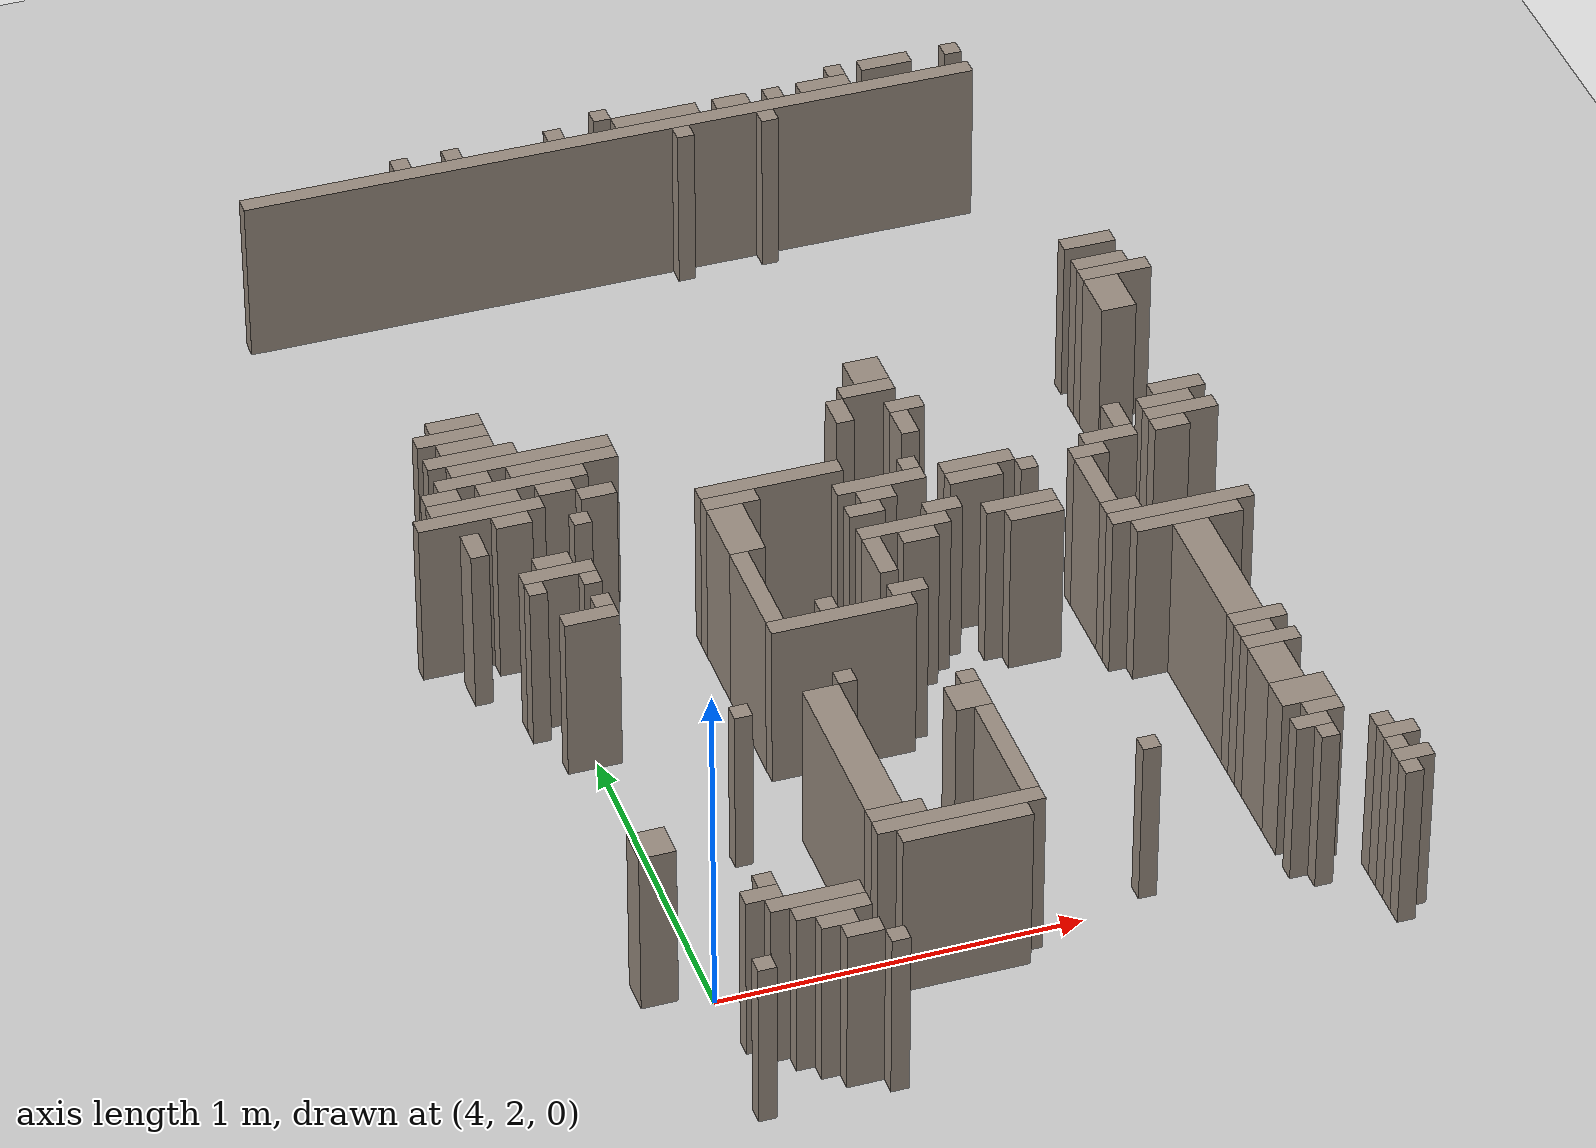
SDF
<sdf version="1.8">
 <world name="sala_real">
  <model name="ground_plane">
   <static>true</static>
   <link name="link">
    <collision name="col">
     <geometry><plane><normal>0 0 1</normal><size>100 100</size></plane></geometry>
    </collision>
    <visual name="vis">
     <geometry><plane><normal>0 0 1</normal><size>100 100</size></plane></geometry>
     <material><ambient>0.8 0.8 0.8 1</ambient><diffuse>0.8 0.8 0.8 1</diffuse></material>
    </visual>
   </link>
  </model>
  <model name="wall_18">
   <static>true</static>
   <pose>5.790 4.162 0.250 0 0 0</pose>
   <link name="link">
    <collision name="col"><geometry><box><size>0.150 0.050 0.500</size></box></geometry></collision>
    <visual name="vis">
     <geometry><box><size>0.150 0.050 0.500</size></box></geometry>
     <material><ambient>0.6 0.55 0.5 1</ambient><diffuse>0.6 0.55 0.5 1</diffuse></material>
    </visual>
   </link>
  </model>
  <model name="wall_22">
   <static>true</static>
   <pose>3.890 3.912 0.250 0 0 0</pose>
   <link name="link">
    <collision name="col"><geometry><box><size>0.150 0.050 0.500</size></box></geometry></collision>
    <visual name="vis">
     <geometry><box><size>0.150 0.050 0.500</size></box></geometry>
     <material><ambient>0.6 0.55 0.5 1</ambient><diffuse>0.6 0.55 0.5 1</diffuse></material>
    </visual>
   </link>
  </model>
  <model name="wall_25">
   <static>true</static>
   <pose>4.890 5.012 0.250 0 0 0</pose>
   <link name="link">
    <collision name="col"><geometry><box><size>0.050 0.050 0.500</size></box></geometry></collision>
    <visual name="vis">
     <geometry><box><size>0.050 0.050 0.500</size></box></geometry>
     <material><ambient>0.6 0.55 0.5 1</ambient><diffuse>0.6 0.55 0.5 1</diffuse></material>
    </visual>
   </link>
  </model>
  <model name="wall_26">
   <static>true</static>
   <pose>5.065 5.112 0.250 0 0 0</pose>
   <link name="link">
    <collision name="col"><geometry><box><size>0.100 0.050 0.500</size></box></geometry></collision>
    <visual name="vis">
     <geometry><box><size>0.100 0.050 0.500</size></box></geometry>
     <material><ambient>0.6 0.55 0.5 1</ambient><diffuse>0.6 0.55 0.5 1</diffuse></material>
    </visual>
   </link>
  </model>
  <model name="wall_32">
   <static>true</static>
   <pose>3.765 3.612 0.250 0 0 0</pose>
   <link name="link">
    <collision name="col"><geometry><box><size>0.100 0.050 0.500</size></box></geometry></collision>
    <visual name="vis">
     <geometry><box><size>0.100 0.050 0.500</size></box></geometry>
     <material><ambient>0.6 0.55 0.5 1</ambient><diffuse>0.6 0.55 0.5 1</diffuse></material>
    </visual>
   </link>
  </model>
  <model name="wall_33">
   <static>true</static>
   <pose>5.790 4.062 0.250 0 0 0</pose>
   <link name="link">
    <collision name="col"><geometry><box><size>0.150 0.050 0.500</size></box></geometry></collision>
    <visual name="vis">
     <geometry><box><size>0.150 0.050 0.500</size></box></geometry>
     <material><ambient>0.6 0.55 0.5 1</ambient><diffuse>0.6 0.55 0.5 1</diffuse></material>
    </visual>
   </link>
  </model>
  <model name="wall_35">
   <static>true</static>
   <pose>4.090 5.112 0.250 0 0 0</pose>
   <link name="link">
    <collision name="col"><geometry><box><size>0.050 0.050 0.500</size></box></geometry></collision>
    <visual name="vis">
     <geometry><box><size>0.050 0.050 0.500</size></box></geometry>
     <material><ambient>0.6 0.55 0.5 1</ambient><diffuse>0.6 0.55 0.5 1</diffuse></material>
    </visual>
   </link>
  </model>
  <model name="wall_38">
   <static>true</static>
   <pose>5.540 5.162 0.250 0 0 0</pose>
   <link name="link">
    <collision name="col"><geometry><box><size>0.150 0.050 0.500</size></box></geometry></collision>
    <visual name="vis">
     <geometry><box><size>0.150 0.050 0.500</size></box></geometry>
     <material><ambient>0.6 0.55 0.5 1</ambient><diffuse>0.6 0.55 0.5 1</diffuse></material>
    </visual>
   </link>
  </model>
  <model name="wall_44">
   <static>true</static>
   <pose>5.015 3.787 0.250 0 0 0</pose>
   <link name="link">
    <collision name="col"><geometry><box><size>0.100 0.100 0.500</size></box></geometry></collision>
    <visual name="vis">
     <geometry><box><size>0.100 0.100 0.500</size></box></geometry>
     <material><ambient>0.6 0.55 0.5 1</ambient><diffuse>0.6 0.55 0.5 1</diffuse></material>
    </visual>
   </link>
  </model>
  <model name="wall_45">
   <static>true</static>
   <pose>4.890 3.312 0.250 0 0 0</pose>
   <link name="link">
    <collision name="col"><geometry><box><size>0.250 0.050 0.500</size></box></geometry></collision>
    <visual name="vis">
     <geometry><box><size>0.250 0.050 0.500</size></box></geometry>
     <material><ambient>0.6 0.55 0.5 1</ambient><diffuse>0.6 0.55 0.5 1</diffuse></material>
    </visual>
   </link>
  </model>
  <model name="wall_47">
   <static>true</static>
   <pose>4.040 3.162 0.250 0 0 0</pose>
   <link name="link">
    <collision name="col"><geometry><box><size>0.050 0.050 0.500</size></box></geometry></collision>
    <visual name="vis">
     <geometry><box><size>0.050 0.050 0.500</size></box></geometry>
     <material><ambient>0.6 0.55 0.5 1</ambient><diffuse>0.6 0.55 0.5 1</diffuse></material>
    </visual>
   </link>
  </model>
  <model name="wall_49">
   <static>true</static>
   <pose>5.465 3.262 0.250 0 0 0</pose>
   <link name="link">
    <collision name="col"><geometry><box><size>0.100 0.050 0.500</size></box></geometry></collision>
    <visual name="vis">
     <geometry><box><size>0.100 0.050 0.500</size></box></geometry>
     <material><ambient>0.6 0.55 0.5 1</ambient><diffuse>0.6 0.55 0.5 1</diffuse></material>
    </visual>
   </link>
  </model>
  <model name="wall_56">
   <static>true</static>
   <pose>4.815 3.212 0.250 0 0 0</pose>
   <link name="link">
    <collision name="col"><geometry><box><size>0.100 0.050 0.500</size></box></geometry></collision>
    <visual name="vis">
     <geometry><box><size>0.100 0.050 0.500</size></box></geometry>
     <material><ambient>0.6 0.55 0.5 1</ambient><diffuse>0.6 0.55 0.5 1</diffuse></material>
    </visual>
   </link>
  </model>
  <model name="wall_59">
   <static>true</static>
   <pose>4.615 3.412 0.250 0 0 0</pose>
   <link name="link">
    <collision name="col"><geometry><box><size>0.400 0.050 0.500</size></box></geometry></collision>
    <visual name="vis">
     <geometry><box><size>0.400 0.050 0.500</size></box></geometry>
     <material><ambient>0.6 0.55 0.5 1</ambient><diffuse>0.6 0.55 0.5 1</diffuse></material>
    </visual>
   </link>
  </model>
  <model name="wall_66">
   <static>true</static>
   <pose>4.540 5.112 0.250 0 0 0</pose>
   <link name="link">
    <collision name="col"><geometry><box><size>0.050 0.050 0.500</size></box></geometry></collision>
    <visual name="vis">
     <geometry><box><size>0.050 0.050 0.500</size></box></geometry>
     <material><ambient>0.6 0.55 0.5 1</ambient><diffuse>0.6 0.55 0.5 1</diffuse></material>
    </visual>
   </link>
  </model>
  <model name="wall_69">
   <static>true</static>
   <pose>4.240 5.112 0.250 0 0 0</pose>
   <link name="link">
    <collision name="col"><geometry><box><size>0.050 0.050 0.500</size></box></geometry></collision>
    <visual name="vis">
     <geometry><box><size>0.050 0.050 0.500</size></box></geometry>
     <material><ambient>0.6 0.55 0.5 1</ambient><diffuse>0.6 0.55 0.5 1</diffuse></material>
    </visual>
   </link>
  </model>
  <model name="wall_70">
   <static>true</static>
   <pose>4.465 3.237 0.250 0 0 0</pose>
   <link name="link">
    <collision name="col"><geometry><box><size>0.100 0.200 0.500</size></box></geometry></collision>
    <visual name="vis">
     <geometry><box><size>0.100 0.200 0.500</size></box></geometry>
     <material><ambient>0.6 0.55 0.5 1</ambient><diffuse>0.6 0.55 0.5 1</diffuse></material>
    </visual>
   </link>
  </model>
  <model name="wall_76">
   <static>true</static>
   <pose>4.815 2.862 0.250 0 0 0</pose>
   <link name="link">
    <collision name="col"><geometry><box><size>0.100 0.050 0.500</size></box></geometry></collision>
    <visual name="vis">
     <geometry><box><size>0.100 0.050 0.500</size></box></geometry>
     <material><ambient>0.6 0.55 0.5 1</ambient><diffuse>0.6 0.55 0.5 1</diffuse></material>
    </visual>
   </link>
  </model>
  <model name="wall_77">
   <static>true</static>
   <pose>5.615 2.687 0.250 0 0 0</pose>
   <link name="link">
    <collision name="col"><geometry><box><size>0.100 0.400 0.500</size></box></geometry></collision>
    <visual name="vis">
     <geometry><box><size>0.100 0.400 0.500</size></box></geometry>
     <material><ambient>0.6 0.55 0.5 1</ambient><diffuse>0.6 0.55 0.5 1</diffuse></material>
    </visual>
   </link>
  </model>
  <model name="wall_80">
   <static>true</static>
   <pose>5.640 2.462 0.250 0 0 0</pose>
   <link name="link">
    <collision name="col"><geometry><box><size>0.150 0.050 0.500</size></box></geometry></collision>
    <visual name="vis">
     <geometry><box><size>0.150 0.050 0.500</size></box></geometry>
     <material><ambient>0.6 0.55 0.5 1</ambient><diffuse>0.6 0.55 0.5 1</diffuse></material>
    </visual>
   </link>
  </model>
  <model name="wall_83">
   <static>true</static>
   <pose>4.840 2.462 0.250 0 0 0</pose>
   <link name="link">
    <collision name="col"><geometry><box><size>0.050 0.050 0.500</size></box></geometry></collision>
    <visual name="vis">
     <geometry><box><size>0.050 0.050 0.500</size></box></geometry>
     <material><ambient>0.6 0.55 0.5 1</ambient><diffuse>0.6 0.55 0.5 1</diffuse></material>
    </visual>
   </link>
  </model>
  <model name="wall_84">
   <static>true</static>
   <pose>5.615 2.412 0.250 0 0 0</pose>
   <link name="link">
    <collision name="col"><geometry><box><size>0.100 0.050 0.500</size></box></geometry></collision>
    <visual name="vis">
     <geometry><box><size>0.100 0.050 0.500</size></box></geometry>
     <material><ambient>0.6 0.55 0.5 1</ambient><diffuse>0.6 0.55 0.5 1</diffuse></material>
    </visual>
   </link>
  </model>
  <model name="wall_90">
   <static>true</static>
   <pose>5.640 2.362 0.250 0 0 0</pose>
   <link name="link">
    <collision name="col"><geometry><box><size>0.150 0.050 0.500</size></box></geometry></collision>
    <visual name="vis">
     <geometry><box><size>0.150 0.050 0.500</size></box></geometry>
     <material><ambient>0.6 0.55 0.5 1</ambient><diffuse>0.6 0.55 0.5 1</diffuse></material>
    </visual>
   </link>
  </model>
  <model name="wall_93">
   <static>true</static>
   <pose>5.190 5.112 0.250 0 0 0</pose>
   <link name="link">
    <collision name="col"><geometry><box><size>0.050 0.050 0.500</size></box></geometry></collision>
    <visual name="vis">
     <geometry><box><size>0.050 0.050 0.500</size></box></geometry>
     <material><ambient>0.6 0.55 0.5 1</ambient><diffuse>0.6 0.55 0.5 1</diffuse></material>
    </visual>
   </link>
  </model>
  <model name="wall_94">
   <static>true</static>
   <pose>4.490 3.362 0.250 0 0 0</pose>
   <link name="link">
    <collision name="col"><geometry><box><size>0.150 0.050 0.500</size></box></geometry></collision>
    <visual name="vis">
     <geometry><box><size>0.150 0.050 0.500</size></box></geometry>
     <material><ambient>0.6 0.55 0.5 1</ambient><diffuse>0.6 0.55 0.5 1</diffuse></material>
    </visual>
   </link>
  </model>
  <model name="wall_95">
   <static>true</static>
   <pose>5.615 2.262 0.250 0 0 0</pose>
   <link name="link">
    <collision name="col"><geometry><box><size>0.100 0.150 0.500</size></box></geometry></collision>
    <visual name="vis">
     <geometry><box><size>0.100 0.150 0.500</size></box></geometry>
     <material><ambient>0.6 0.55 0.5 1</ambient><diffuse>0.6 0.55 0.5 1</diffuse></material>
    </visual>
   </link>
  </model>
  <model name="wall_102">
   <static>true</static>
   <pose>4.090 3.412 0.250 0 0 0</pose>
   <link name="link">
    <collision name="col"><geometry><box><size>0.050 0.050 0.500</size></box></geometry></collision>
    <visual name="vis">
     <geometry><box><size>0.050 0.050 0.500</size></box></geometry>
     <material><ambient>0.6 0.55 0.5 1</ambient><diffuse>0.6 0.55 0.5 1</diffuse></material>
    </visual>
   </link>
  </model>
  <model name="wall_103">
   <static>true</static>
   <pose>5.790 1.962 0.250 0 0 0</pose>
   <link name="link">
    <collision name="col"><geometry><box><size>0.050 0.050 0.500</size></box></geometry></collision>
    <visual name="vis">
     <geometry><box><size>0.050 0.050 0.500</size></box></geometry>
     <material><ambient>0.6 0.55 0.5 1</ambient><diffuse>0.6 0.55 0.5 1</diffuse></material>
    </visual>
   </link>
  </model>
  <model name="wall_104">
   <static>true</static>
   <pose>4.065 3.562 0.250 0 0 0</pose>
   <link name="link">
    <collision name="col"><geometry><box><size>0.100 0.050 0.500</size></box></geometry></collision>
    <visual name="vis">
     <geometry><box><size>0.100 0.050 0.500</size></box></geometry>
     <material><ambient>0.6 0.55 0.5 1</ambient><diffuse>0.6 0.55 0.5 1</diffuse></material>
    </visual>
   </link>
  </model>
  <model name="wall_105">
   <static>true</static>
   <pose>5.815 1.912 0.250 0 0 0</pose>
   <link name="link">
    <collision name="col"><geometry><box><size>0.100 0.050 0.500</size></box></geometry></collision>
    <visual name="vis">
     <geometry><box><size>0.100 0.050 0.500</size></box></geometry>
     <material><ambient>0.6 0.55 0.5 1</ambient><diffuse>0.6 0.55 0.5 1</diffuse></material>
    </visual>
   </link>
  </model>
  <model name="wall_107">
   <static>true</static>
   <pose>5.790 1.862 0.250 0 0 0</pose>
   <link name="link">
    <collision name="col"><geometry><box><size>0.050 0.050 0.500</size></box></geometry></collision>
    <visual name="vis">
     <geometry><box><size>0.050 0.050 0.500</size></box></geometry>
     <material><ambient>0.6 0.55 0.5 1</ambient><diffuse>0.6 0.55 0.5 1</diffuse></material>
    </visual>
   </link>
  </model>
  <model name="wall_132">
   <static>true</static>
   <pose>5.740 3.412 0.250 0 0 0</pose>
   <link name="link">
    <collision name="col"><geometry><box><size>0.150 0.050 0.500</size></box></geometry></collision>
    <visual name="vis">
     <geometry><box><size>0.150 0.050 0.500</size></box></geometry>
     <material><ambient>0.6 0.55 0.5 1</ambient><diffuse>0.6 0.55 0.5 1</diffuse></material>
    </visual>
   </link>
  </model>
  <model name="wall_134">
   <static>true</static>
   <pose>3.890 3.762 0.250 0 0 0</pose>
   <link name="link">
    <collision name="col"><geometry><box><size>0.250 0.050 0.500</size></box></geometry></collision>
    <visual name="vis">
     <geometry><box><size>0.250 0.050 0.500</size></box></geometry>
     <material><ambient>0.6 0.55 0.5 1</ambient><diffuse>0.6 0.55 0.5 1</diffuse></material>
    </visual>
   </link>
  </model>
  <model name="wall_135">
   <static>true</static>
   <pose>4.090 1.862 0.250 0 0 0</pose>
   <link name="link">
    <collision name="col"><geometry><box><size>0.050 0.050 0.500</size></box></geometry></collision>
    <visual name="vis">
     <geometry><box><size>0.050 0.050 0.500</size></box></geometry>
     <material><ambient>0.6 0.55 0.5 1</ambient><diffuse>0.6 0.55 0.5 1</diffuse></material>
    </visual>
   </link>
  </model>
  <model name="wall_144">
   <static>true</static>
   <pose>3.865 2.087 0.250 0 0 0</pose>
   <link name="link">
    <collision name="col"><geometry><box><size>0.100 0.100 0.500</size></box></geometry></collision>
    <visual name="vis">
     <geometry><box><size>0.100 0.100 0.500</size></box></geometry>
     <material><ambient>0.6 0.55 0.5 1</ambient><diffuse>0.6 0.55 0.5 1</diffuse></material>
    </visual>
   </link>
  </model>
  <model name="wall_147">
   <static>true</static>
   <pose>3.890 3.812 0.250 0 0 0</pose>
   <link name="link">
    <collision name="col"><geometry><box><size>0.150 0.050 0.500</size></box></geometry></collision>
    <visual name="vis">
     <geometry><box><size>0.150 0.050 0.500</size></box></geometry>
     <material><ambient>0.6 0.55 0.5 1</ambient><diffuse>0.6 0.55 0.5 1</diffuse></material>
    </visual>
   </link>
  </model>
  <model name="wall_153">
   <static>true</static>
   <pose>3.915 3.462 0.250 0 0 0</pose>
   <link name="link">
    <collision name="col"><geometry><box><size>0.100 0.050 0.500</size></box></geometry></collision>
    <visual name="vis">
     <geometry><box><size>0.100 0.050 0.500</size></box></geometry>
     <material><ambient>0.6 0.55 0.5 1</ambient><diffuse>0.6 0.55 0.5 1</diffuse></material>
    </visual>
   </link>
  </model>
  <model name="wall_169">
   <static>true</static>
   <pose>3.965 3.212 0.250 0 0 0</pose>
   <link name="link">
    <collision name="col"><geometry><box><size>0.200 0.050 0.500</size></box></geometry></collision>
    <visual name="vis">
     <geometry><box><size>0.200 0.050 0.500</size></box></geometry>
     <material><ambient>0.6 0.55 0.5 1</ambient><diffuse>0.6 0.55 0.5 1</diffuse></material>
    </visual>
   </link>
  </model>
  <model name="wall_175">
   <static>true</static>
   <pose>4.440 2.987 0.250 0 0 0</pose>
   <link name="link">
    <collision name="col"><geometry><box><size>0.050 0.300 0.500</size></box></geometry></collision>
    <visual name="vis">
     <geometry><box><size>0.050 0.300 0.500</size></box></geometry>
     <material><ambient>0.6 0.55 0.5 1</ambient><diffuse>0.6 0.55 0.5 1</diffuse></material>
    </visual>
   </link>
  </model>
  <model name="wall_176">
   <static>true</static>
   <pose>4.590 2.862 0.250 0 0 0</pose>
   <link name="link">
    <collision name="col"><geometry><box><size>0.050 0.050 0.500</size></box></geometry></collision>
    <visual name="vis">
     <geometry><box><size>0.050 0.050 0.500</size></box></geometry>
     <material><ambient>0.6 0.55 0.5 1</ambient><diffuse>0.6 0.55 0.5 1</diffuse></material>
    </visual>
   </link>
  </model>
  <model name="wall_198">
   <static>true</static>
   <pose>3.990 3.012 0.250 0 0 0</pose>
   <link name="link">
    <collision name="col"><geometry><box><size>0.150 0.050 0.500</size></box></geometry></collision>
    <visual name="vis">
     <geometry><box><size>0.150 0.050 0.500</size></box></geometry>
     <material><ambient>0.6 0.55 0.5 1</ambient><diffuse>0.6 0.55 0.5 1</diffuse></material>
    </visual>
   </link>
  </model>
  <model name="wall_203">
   <static>true</static>
   <pose>4.465 2.287 0.250 0 0 0</pose>
   <link name="link">
    <collision name="col"><geometry><box><size>0.100 0.500 0.500</size></box></geometry></collision>
    <visual name="vis">
     <geometry><box><size>0.100 0.500 0.500</size></box></geometry>
     <material><ambient>0.6 0.55 0.5 1</ambient><diffuse>0.6 0.55 0.5 1</diffuse></material>
    </visual>
   </link>
  </model>
  <model name="wall_209">
   <static>true</static>
   <pose>3.965 3.262 0.250 0 0 0</pose>
   <link name="link">
    <collision name="col"><geometry><box><size>0.100 0.050 0.500</size></box></geometry></collision>
    <visual name="vis">
     <geometry><box><size>0.100 0.050 0.500</size></box></geometry>
     <material><ambient>0.6 0.55 0.5 1</ambient><diffuse>0.6 0.55 0.5 1</diffuse></material>
    </visual>
   </link>
  </model>
  <model name="wall_263">
   <static>true</static>
   <pose>3.890 3.162 0.250 0 0 0</pose>
   <link name="link">
    <collision name="col"><geometry><box><size>0.050 0.050 0.500</size></box></geometry></collision>
    <visual name="vis">
     <geometry><box><size>0.050 0.050 0.500</size></box></geometry>
     <material><ambient>0.6 0.55 0.5 1</ambient><diffuse>0.6 0.55 0.5 1</diffuse></material>
    </visual>
   </link>
  </model>
  <model name="wall_270">
   <static>true</static>
   <pose>3.790 3.387 0.250 0 0 0</pose>
   <link name="link">
    <collision name="col"><geometry><box><size>0.050 0.100 0.500</size></box></geometry></collision>
    <visual name="vis">
     <geometry><box><size>0.050 0.100 0.500</size></box></geometry>
     <material><ambient>0.6 0.55 0.5 1</ambient><diffuse>0.6 0.55 0.5 1</diffuse></material>
    </visual>
   </link>
  </model>
  <model name="wall_287">
   <static>true</static>
   <pose>5.190 2.062 0.250 0 0 0</pose>
   <link name="link">
    <collision name="col"><geometry><box><size>0.050 0.050 0.500</size></box></geometry></collision>
    <visual name="vis">
     <geometry><box><size>0.050 0.050 0.500</size></box></geometry>
     <material><ambient>0.6 0.55 0.5 1</ambient><diffuse>0.6 0.55 0.5 1</diffuse></material>
    </visual>
   </link>
  </model>
  <model name="wall_309">
   <static>true</static>
   <pose>3.865 3.862 0.250 0 0 0</pose>
   <link name="link">
    <collision name="col"><geometry><box><size>0.200 0.050 0.500</size></box></geometry></collision>
    <visual name="vis">
     <geometry><box><size>0.200 0.050 0.500</size></box></geometry>
     <material><ambient>0.6 0.55 0.5 1</ambient><diffuse>0.6 0.55 0.5 1</diffuse></material>
    </visual>
   </link>
  </model>
  <model name="wall_333">
   <static>true</static>
   <pose>3.990 1.562 0.250 0 0 0</pose>
   <link name="link">
    <collision name="col"><geometry><box><size>0.050 0.050 0.500</size></box></geometry></collision>
    <visual name="vis">
     <geometry><box><size>0.050 0.050 0.500</size></box></geometry>
     <material><ambient>0.6 0.55 0.5 1</ambient><diffuse>0.6 0.55 0.5 1</diffuse></material>
    </visual>
   </link>
  </model>
  <model name="wall_345">
   <static>true</static>
   <pose>4.040 3.062 0.250 0 0 0</pose>
   <link name="link">
    <collision name="col"><geometry><box><size>0.050 0.050 0.500</size></box></geometry></collision>
    <visual name="vis">
     <geometry><box><size>0.050 0.050 0.500</size></box></geometry>
     <material><ambient>0.6 0.55 0.5 1</ambient><diffuse>0.6 0.55 0.5 1</diffuse></material>
    </visual>
   </link>
  </model>
  <model name="wall_403">
   <static>true</static>
   <pose>4.990 3.362 0.250 0 0 0</pose>
   <link name="link">
    <collision name="col"><geometry><box><size>0.050 0.050 0.500</size></box></geometry></collision>
    <visual name="vis">
     <geometry><box><size>0.050 0.050 0.500</size></box></geometry>
     <material><ambient>0.6 0.55 0.5 1</ambient><diffuse>0.6 0.55 0.5 1</diffuse></material>
    </visual>
   </link>
  </model>
  <model name="wall_404">
   <static>true</static>
   <pose>5.140 5.012 0.250 0 0 0</pose>
   <link name="link">
    <collision name="col"><geometry><box><size>0.050 0.050 0.500</size></box></geometry></collision>
    <visual name="vis">
     <geometry><box><size>0.050 0.050 0.500</size></box></geometry>
     <material><ambient>0.6 0.55 0.5 1</ambient><diffuse>0.6 0.55 0.5 1</diffuse></material>
    </visual>
   </link>
  </model>
  <model name="wall_410">
   <static>true</static>
   <pose>4.165 3.512 0.250 0 0 0</pose>
   <link name="link">
    <collision name="col"><geometry><box><size>0.100 0.050 0.500</size></box></geometry></collision>
    <visual name="vis">
     <geometry><box><size>0.100 0.050 0.500</size></box></geometry>
     <material><ambient>0.6 0.55 0.5 1</ambient><diffuse>0.6 0.55 0.5 1</diffuse></material>
    </visual>
   </link>
  </model>
  <model name="wall_411">
   <static>true</static>
   <pose>4.790 3.012 0.250 0 0 0</pose>
   <link name="link">
    <collision name="col"><geometry><box><size>0.050 0.150 0.500</size></box></geometry></collision>
    <visual name="vis">
     <geometry><box><size>0.050 0.150 0.500</size></box></geometry>
     <material><ambient>0.6 0.55 0.5 1</ambient><diffuse>0.6 0.55 0.5 1</diffuse></material>
    </visual>
   </link>
  </model>
  <model name="wall_607">
   <static>true</static>
   <pose>4.690 5.162 0.250 0 0 0</pose>
   <link name="link">
    <collision name="col"><geometry><box><size>0.050 0.050 0.500</size></box></geometry></collision>
    <visual name="vis">
     <geometry><box><size>0.050 0.050 0.500</size></box></geometry>
     <material><ambient>0.6 0.55 0.5 1</ambient><diffuse>0.6 0.55 0.5 1</diffuse></material>
    </visual>
   </link>
  </model>
  <model name="wall_608">
   <static>true</static>
   <pose>5.390 5.162 0.250 0 0 0</pose>
   <link name="link">
    <collision name="col"><geometry><box><size>0.050 0.050 0.500</size></box></geometry></collision>
    <visual name="vis">
     <geometry><box><size>0.050 0.050 0.500</size></box></geometry>
     <material><ambient>0.6 0.55 0.5 1</ambient><diffuse>0.6 0.55 0.5 1</diffuse></material>
    </visual>
   </link>
  </model>
  <model name="wall_609">
   <static>true</static>
   <pose>5.540 3.312 0.250 0 0 0</pose>
   <link name="link">
    <collision name="col"><geometry><box><size>0.150 0.050 0.500</size></box></geometry></collision>
    <visual name="vis">
     <geometry><box><size>0.150 0.050 0.500</size></box></geometry>
     <material><ambient>0.6 0.55 0.5 1</ambient><diffuse>0.6 0.55 0.5 1</diffuse></material>
    </visual>
   </link>
  </model>
  <model name="wall_610">
   <static>true</static>
   <pose>5.740 5.162 0.250 0 0 0</pose>
   <link name="link">
    <collision name="col"><geometry><box><size>0.050 0.050 0.500</size></box></geometry></collision>
    <visual name="vis">
     <geometry><box><size>0.050 0.050 0.500</size></box></geometry>
     <material><ambient>0.6 0.55 0.5 1</ambient><diffuse>0.6 0.55 0.5 1</diffuse></material>
    </visual>
   </link>
  </model>
  <model name="wall_615">
   <static>true</static>
   <pose>4.240 2.512 0.250 0 0 0</pose>
   <link name="link">
    <collision name="col"><geometry><box><size>0.050 0.050 0.500</size></box></geometry></collision>
    <visual name="vis">
     <geometry><box><size>0.050 0.050 0.500</size></box></geometry>
     <material><ambient>0.6 0.55 0.5 1</ambient><diffuse>0.6 0.55 0.5 1</diffuse></material>
    </visual>
   </link>
  </model>
  <model name="wall_616">
   <static>true</static>
   <pose>4.540 2.562 0.250 0 0 0</pose>
   <link name="link">
    <collision name="col"><geometry><box><size>0.050 0.050 0.500</size></box></geometry></collision>
    <visual name="vis">
     <geometry><box><size>0.050 0.050 0.500</size></box></geometry>
     <material><ambient>0.6 0.55 0.5 1</ambient><diffuse>0.6 0.55 0.5 1</diffuse></material>
    </visual>
   </link>
  </model>
  <model name="wall_617">
   <static>true</static>
   <pose>4.840 5.112 0.250 0 0 0</pose>
   <link name="link">
    <collision name="col"><geometry><box><size>0.250 0.050 0.500</size></box></geometry></collision>
    <visual name="vis">
     <geometry><box><size>0.250 0.050 0.500</size></box></geometry>
     <material><ambient>0.6 0.55 0.5 1</ambient><diffuse>0.6 0.55 0.5 1</diffuse></material>
    </visual>
   </link>
  </model>
  <model name="wall_618">
   <static>true</static>
   <pose>5.065 3.612 0.250 0 0 0</pose>
   <link name="link">
    <collision name="col"><geometry><box><size>0.100 0.050 0.500</size></box></geometry></collision>
    <visual name="vis">
     <geometry><box><size>0.100 0.050 0.500</size></box></geometry>
     <material><ambient>0.6 0.55 0.5 1</ambient><diffuse>0.6 0.55 0.5 1</diffuse></material>
    </visual>
   </link>
  </model>
  <model name="wall_620">
   <static>true</static>
   <pose>5.340 5.112 0.250 0 0 0</pose>
   <link name="link">
    <collision name="col"><geometry><box><size>0.150 0.050 0.500</size></box></geometry></collision>
    <visual name="vis">
     <geometry><box><size>0.150 0.050 0.500</size></box></geometry>
     <material><ambient>0.6 0.55 0.5 1</ambient><diffuse>0.6 0.55 0.5 1</diffuse></material>
    </visual>
   </link>
  </model>
  <model name="wall_624">
   <static>true</static>
   <pose>4.690 5.062 0.250 0 0 0</pose>
   <link name="link">
    <collision name="col"><geometry><box><size>2.150 0.050 0.500</size></box></geometry></collision>
    <visual name="vis">
     <geometry><box><size>2.150 0.050 0.500</size></box></geometry>
     <material><ambient>0.6 0.55 0.5 1</ambient><diffuse>0.6 0.55 0.5 1</diffuse></material>
    </visual>
   </link>
  </model>
  <model name="wall_634">
   <static>true</static>
   <pose>4.890 3.637 0.250 0 0 0</pose>
   <link name="link">
    <collision name="col"><geometry><box><size>0.050 0.100 0.500</size></box></geometry></collision>
    <visual name="vis">
     <geometry><box><size>0.050 0.100 0.500</size></box></geometry>
     <material><ambient>0.6 0.55 0.5 1</ambient><diffuse>0.6 0.55 0.5 1</diffuse></material>
    </visual>
   </link>
  </model>
  <model name="wall_705">
   <static>true</static>
   <pose>5.815 1.812 0.250 0 0 0</pose>
   <link name="link">
    <collision name="col"><geometry><box><size>0.100 0.050 0.500</size></box></geometry></collision>
    <visual name="vis">
     <geometry><box><size>0.100 0.050 0.500</size></box></geometry>
     <material><ambient>0.6 0.55 0.5 1</ambient><diffuse>0.6 0.55 0.5 1</diffuse></material>
    </visual>
   </link>
  </model>
  <model name="wall_708">
   <static>true</static>
   <pose>5.790 3.462 0.250 0 0 0</pose>
   <link name="link">
    <collision name="col"><geometry><box><size>0.150 0.050 0.500</size></box></geometry></collision>
    <visual name="vis">
     <geometry><box><size>0.150 0.050 0.500</size></box></geometry>
     <material><ambient>0.6 0.55 0.5 1</ambient><diffuse>0.6 0.55 0.5 1</diffuse></material>
    </visual>
   </link>
  </model>
  <model name="wall_711">
   <static>true</static>
   <pose>5.815 4.012 0.250 0 0 0</pose>
   <link name="link">
    <collision name="col"><geometry><box><size>0.200 0.050 0.500</size></box></geometry></collision>
    <visual name="vis">
     <geometry><box><size>0.200 0.050 0.500</size></box></geometry>
     <material><ambient>0.6 0.55 0.5 1</ambient><diffuse>0.6 0.55 0.5 1</diffuse></material>
    </visual>
   </link>
  </model>
  <model name="wall_719">
   <static>true</static>
   <pose>5.765 3.912 0.250 0 0 0</pose>
   <link name="link">
    <collision name="col"><geometry><box><size>0.100 0.150 0.500</size></box></geometry></collision>
    <visual name="vis">
     <geometry><box><size>0.100 0.150 0.500</size></box></geometry>
     <material><ambient>0.6 0.55 0.5 1</ambient><diffuse>0.6 0.55 0.5 1</diffuse></material>
    </visual>
   </link>
  </model>
  <model name="wall_725">
   <static>true</static>
   <pose>5.015 3.162 0.250 0 0 0</pose>
   <link name="link">
    <collision name="col"><geometry><box><size>0.100 0.050 0.500</size></box></geometry></collision>
    <visual name="vis">
     <geometry><box><size>0.100 0.050 0.500</size></box></geometry>
     <material><ambient>0.6 0.55 0.5 1</ambient><diffuse>0.6 0.55 0.5 1</diffuse></material>
    </visual>
   </link>
  </model>
  <model name="wall_727">
   <static>true</static>
   <pose>4.040 3.712 0.250 0 0 0</pose>
   <link name="link">
    <collision name="col"><geometry><box><size>0.450 0.050 0.500</size></box></geometry></collision>
    <visual name="vis">
     <geometry><box><size>0.450 0.050 0.500</size></box></geometry>
     <material><ambient>0.6 0.55 0.5 1</ambient><diffuse>0.6 0.55 0.5 1</diffuse></material>
    </visual>
   </link>
  </model>
  <model name="wall_728">
   <static>true</static>
   <pose>4.990 3.712 0.250 0 0 0</pose>
   <link name="link">
    <collision name="col"><geometry><box><size>0.150 0.050 0.500</size></box></geometry></collision>
    <visual name="vis">
     <geometry><box><size>0.150 0.050 0.500</size></box></geometry>
     <material><ambient>0.6 0.55 0.5 1</ambient><diffuse>0.6 0.55 0.5 1</diffuse></material>
    </visual>
   </link>
  </model>
  <model name="wall_729">
   <static>true</static>
   <pose>3.840 3.662 0.250 0 0 0</pose>
   <link name="link">
    <collision name="col"><geometry><box><size>0.150 0.050 0.500</size></box></geometry></collision>
    <visual name="vis">
     <geometry><box><size>0.150 0.050 0.500</size></box></geometry>
     <material><ambient>0.6 0.55 0.5 1</ambient><diffuse>0.6 0.55 0.5 1</diffuse></material>
    </visual>
   </link>
  </model>
  <model name="wall_730">
   <static>true</static>
   <pose>4.115 3.662 0.250 0 0 0</pose>
   <link name="link">
    <collision name="col"><geometry><box><size>0.300 0.050 0.500</size></box></geometry></collision>
    <visual name="vis">
     <geometry><box><size>0.300 0.050 0.500</size></box></geometry>
     <material><ambient>0.6 0.55 0.5 1</ambient><diffuse>0.6 0.55 0.5 1</diffuse></material>
    </visual>
   </link>
  </model>
  <model name="wall_732">
   <static>true</static>
   <pose>4.015 3.612 0.250 0 0 0</pose>
   <link name="link">
    <collision name="col"><geometry><box><size>0.300 0.050 0.500</size></box></geometry></collision>
    <visual name="vis">
     <geometry><box><size>0.300 0.050 0.500</size></box></geometry>
     <material><ambient>0.6 0.55 0.5 1</ambient><diffuse>0.6 0.55 0.5 1</diffuse></material>
    </visual>
   </link>
  </model>
  <model name="wall_733">
   <static>true</static>
   <pose>3.840 3.562 0.250 0 0 0</pose>
   <link name="link">
    <collision name="col"><geometry><box><size>0.250 0.050 0.500</size></box></geometry></collision>
    <visual name="vis">
     <geometry><box><size>0.250 0.050 0.500</size></box></geometry>
     <material><ambient>0.6 0.55 0.5 1</ambient><diffuse>0.6 0.55 0.5 1</diffuse></material>
    </visual>
   </link>
  </model>
  <model name="wall_734">
   <static>true</static>
   <pose>4.065 1.812 0.250 0 0 0</pose>
   <link name="link">
    <collision name="col"><geometry><box><size>0.100 0.050 0.500</size></box></geometry></collision>
    <visual name="vis">
     <geometry><box><size>0.100 0.050 0.500</size></box></geometry>
     <material><ambient>0.6 0.55 0.5 1</ambient><diffuse>0.6 0.55 0.5 1</diffuse></material>
    </visual>
   </link>
  </model>
  <model name="wall_735">
   <static>true</static>
   <pose>5.040 3.537 0.250 0 0 0</pose>
   <link name="link">
    <collision name="col"><geometry><box><size>0.050 0.100 0.500</size></box></geometry></collision>
    <visual name="vis">
     <geometry><box><size>0.050 0.100 0.500</size></box></geometry>
     <material><ambient>0.6 0.55 0.5 1</ambient><diffuse>0.6 0.55 0.5 1</diffuse></material>
    </visual>
   </link>
  </model>
  <model name="wall_736">
   <static>true</static>
   <pose>3.840 3.512 0.250 0 0 0</pose>
   <link name="link">
    <collision name="col"><geometry><box><size>0.350 0.050 0.500</size></box></geometry></collision>
    <visual name="vis">
     <geometry><box><size>0.350 0.050 0.500</size></box></geometry>
     <material><ambient>0.6 0.55 0.5 1</ambient><diffuse>0.6 0.55 0.5 1</diffuse></material>
    </visual>
   </link>
  </model>
  <model name="wall_741">
   <static>true</static>
   <pose>4.615 2.812 0.250 0 0 0</pose>
   <link name="link">
    <collision name="col"><geometry><box><size>0.400 0.050 0.500</size></box></geometry></collision>
    <visual name="vis">
     <geometry><box><size>0.400 0.050 0.500</size></box></geometry>
     <material><ambient>0.6 0.55 0.5 1</ambient><diffuse>0.6 0.55 0.5 1</diffuse></material>
    </visual>
   </link>
  </model>
  <model name="wall_742">
   <static>true</static>
   <pose>5.590 3.387 0.250 0 0 0</pose>
   <link name="link">
    <collision name="col"><geometry><box><size>0.050 0.100 0.500</size></box></geometry></collision>
    <visual name="vis">
     <geometry><box><size>0.050 0.100 0.500</size></box></geometry>
     <material><ambient>0.6 0.55 0.5 1</ambient><diffuse>0.6 0.55 0.5 1</diffuse></material>
    </visual>
   </link>
  </model>
  <model name="wall_747">
   <static>true</static>
   <pose>4.490 2.012 0.250 0 0 0</pose>
   <link name="link">
    <collision name="col"><geometry><box><size>0.150 0.050 0.500</size></box></geometry></collision>
    <visual name="vis">
     <geometry><box><size>0.150 0.050 0.500</size></box></geometry>
     <material><ambient>0.6 0.55 0.5 1</ambient><diffuse>0.6 0.55 0.5 1</diffuse></material>
    </visual>
   </link>
  </model>
  <model name="wall_749">
   <static>true</static>
   <pose>5.765 3.362 0.250 0 0 0</pose>
   <link name="link">
    <collision name="col"><geometry><box><size>0.200 0.050 0.500</size></box></geometry></collision>
    <visual name="vis">
     <geometry><box><size>0.200 0.050 0.500</size></box></geometry>
     <material><ambient>0.6 0.55 0.5 1</ambient><diffuse>0.6 0.55 0.5 1</diffuse></material>
    </visual>
   </link>
  </model>
  <model name="wall_753">
   <static>true</static>
   <pose>4.890 3.112 0.250 0 0 0</pose>
   <link name="link">
    <collision name="col"><geometry><box><size>0.250 0.050 0.500</size></box></geometry></collision>
    <visual name="vis">
     <geometry><box><size>0.250 0.050 0.500</size></box></geometry>
     <material><ambient>0.6 0.55 0.5 1</ambient><diffuse>0.6 0.55 0.5 1</diffuse></material>
    </visual>
   </link>
  </model>
  <model name="wall_754">
   <static>true</static>
   <pose>5.165 3.312 0.250 0 0 0</pose>
   <link name="link">
    <collision name="col"><geometry><box><size>0.200 0.050 0.500</size></box></geometry></collision>
    <visual name="vis">
     <geometry><box><size>0.200 0.050 0.500</size></box></geometry>
     <material><ambient>0.6 0.55 0.5 1</ambient><diffuse>0.6 0.55 0.5 1</diffuse></material>
    </visual>
   </link>
  </model>
  <model name="wall_755">
   <static>true</static>
   <pose>5.715 3.312 0.250 0 0 0</pose>
   <link name="link">
    <collision name="col"><geometry><box><size>0.100 0.050 0.500</size></box></geometry></collision>
    <visual name="vis">
     <geometry><box><size>0.100 0.050 0.500</size></box></geometry>
     <material><ambient>0.6 0.55 0.5 1</ambient><diffuse>0.6 0.55 0.5 1</diffuse></material>
    </visual>
   </link>
  </model>
  <model name="wall_759">
   <static>true</static>
   <pose>4.865 3.262 0.250 0 0 0</pose>
   <link name="link">
    <collision name="col"><geometry><box><size>0.100 0.050 0.500</size></box></geometry></collision>
    <visual name="vis">
     <geometry><box><size>0.100 0.050 0.500</size></box></geometry>
     <material><ambient>0.6 0.55 0.5 1</ambient><diffuse>0.6 0.55 0.5 1</diffuse></material>
    </visual>
   </link>
  </model>
  <model name="wall_760">
   <static>true</static>
   <pose>5.140 3.262 0.250 0 0 0</pose>
   <link name="link">
    <collision name="col"><geometry><box><size>0.150 0.050 0.500</size></box></geometry></collision>
    <visual name="vis">
     <geometry><box><size>0.150 0.050 0.500</size></box></geometry>
     <material><ambient>0.6 0.55 0.5 1</ambient><diffuse>0.6 0.55 0.5 1</diffuse></material>
    </visual>
   </link>
  </model>
  <model name="wall_761">
   <static>true</static>
   <pose>5.290 3.262 0.250 0 0 0</pose>
   <link name="link">
    <collision name="col"><geometry><box><size>0.050 0.050 0.500</size></box></geometry></collision>
    <visual name="vis">
     <geometry><box><size>0.050 0.050 0.500</size></box></geometry>
     <material><ambient>0.6 0.55 0.5 1</ambient><diffuse>0.6 0.55 0.5 1</diffuse></material>
    </visual>
   </link>
  </model>
  <model name="wall_762">
   <static>true</static>
   <pose>5.465 3.012 0.250 0 0 0</pose>
   <link name="link">
    <collision name="col"><geometry><box><size>0.100 0.050 0.500</size></box></geometry></collision>
    <visual name="vis">
     <geometry><box><size>0.100 0.050 0.500</size></box></geometry>
     <material><ambient>0.6 0.55 0.5 1</ambient><diffuse>0.6 0.55 0.5 1</diffuse></material>
    </visual>
   </link>
  </model>
  <model name="wall_766">
   <static>true</static>
   <pose>4.815 2.387 0.250 0 0 0</pose>
   <link name="link">
    <collision name="col"><geometry><box><size>0.100 0.100 0.500</size></box></geometry></collision>
    <visual name="vis">
     <geometry><box><size>0.100 0.100 0.500</size></box></geometry>
     <material><ambient>0.6 0.55 0.5 1</ambient><diffuse>0.6 0.55 0.5 1</diffuse></material>
    </visual>
   </link>
  </model>
  <model name="wall_767">
   <static>true</static>
   <pose>5.440 3.137 0.250 0 0 0</pose>
   <link name="link">
    <collision name="col"><geometry><box><size>0.050 0.200 0.500</size></box></geometry></collision>
    <visual name="vis">
     <geometry><box><size>0.050 0.200 0.500</size></box></geometry>
     <material><ambient>0.6 0.55 0.5 1</ambient><diffuse>0.6 0.55 0.5 1</diffuse></material>
    </visual>
   </link>
  </model>
  <model name="wall_775">
   <static>true</static>
   <pose>5.215 3.112 0.250 0 0 0</pose>
   <link name="link">
    <collision name="col"><geometry><box><size>0.200 0.050 0.500</size></box></geometry></collision>
    <visual name="vis">
     <geometry><box><size>0.200 0.050 0.500</size></box></geometry>
     <material><ambient>0.6 0.55 0.5 1</ambient><diffuse>0.6 0.55 0.5 1</diffuse></material>
    </visual>
   </link>
  </model>
  <model name="wall_778">
   <static>true</static>
   <pose>4.915 3.062 0.250 0 0 0</pose>
   <link name="link">
    <collision name="col"><geometry><box><size>0.100 0.050 0.500</size></box></geometry></collision>
    <visual name="vis">
     <geometry><box><size>0.100 0.050 0.500</size></box></geometry>
     <material><ambient>0.6 0.55 0.5 1</ambient><diffuse>0.6 0.55 0.5 1</diffuse></material>
    </visual>
   </link>
  </model>
  <model name="wall_779">
   <static>true</static>
   <pose>5.240 3.062 0.250 0 0 0</pose>
   <link name="link">
    <collision name="col"><geometry><box><size>0.150 0.050 0.500</size></box></geometry></collision>
    <visual name="vis">
     <geometry><box><size>0.150 0.050 0.500</size></box></geometry>
     <material><ambient>0.6 0.55 0.5 1</ambient><diffuse>0.6 0.55 0.5 1</diffuse></material>
    </visual>
   </link>
  </model>
  <model name="wall_782">
   <static>true</static>
   <pose>5.615 2.962 0.250 0 0 0</pose>
   <link name="link">
    <collision name="col"><geometry><box><size>0.400 0.050 0.500</size></box></geometry></collision>
    <visual name="vis">
     <geometry><box><size>0.400 0.050 0.500</size></box></geometry>
     <material><ambient>0.6 0.55 0.5 1</ambient><diffuse>0.6 0.55 0.5 1</diffuse></material>
    </visual>
   </link>
  </model>
  <model name="wall_783">
   <static>true</static>
   <pose>5.615 2.912 0.250 0 0 0</pose>
   <link name="link">
    <collision name="col"><geometry><box><size>0.300 0.050 0.500</size></box></geometry></collision>
    <visual name="vis">
     <geometry><box><size>0.300 0.050 0.500</size></box></geometry>
     <material><ambient>0.6 0.55 0.5 1</ambient><diffuse>0.6 0.55 0.5 1</diffuse></material>
    </visual>
   </link>
  </model>
  <model name="wall_785">
   <static>true</static>
   <pose>5.615 2.012 0.250 0 0 0</pose>
   <link name="link">
    <collision name="col"><geometry><box><size>0.100 0.050 0.500</size></box></geometry></collision>
    <visual name="vis">
     <geometry><box><size>0.100 0.050 0.500</size></box></geometry>
     <material><ambient>0.6 0.55 0.5 1</ambient><diffuse>0.6 0.55 0.5 1</diffuse></material>
    </visual>
   </link>
  </model>
  <model name="wall_792">
   <static>true</static>
   <pose>4.840 2.162 0.250 0 0 0</pose>
   <link name="link">
    <collision name="col"><geometry><box><size>0.050 0.350 0.500</size></box></geometry></collision>
    <visual name="vis">
     <geometry><box><size>0.050 0.350 0.500</size></box></geometry>
     <material><ambient>0.6 0.55 0.5 1</ambient><diffuse>0.6 0.55 0.5 1</diffuse></material>
    </visual>
   </link>
  </model>
  <model name="wall_793">
   <static>true</static>
   <pose>5.640 2.137 0.250 0 0 0</pose>
   <link name="link">
    <collision name="col"><geometry><box><size>0.150 0.100 0.500</size></box></geometry></collision>
    <visual name="vis">
     <geometry><box><size>0.150 0.100 0.500</size></box></geometry>
     <material><ambient>0.6 0.55 0.5 1</ambient><diffuse>0.6 0.55 0.5 1</diffuse></material>
    </visual>
   </link>
  </model>
  <model name="wall_799">
   <static>true</static>
   <pose>5.665 2.062 0.250 0 0 0</pose>
   <link name="link">
    <collision name="col"><geometry><box><size>0.100 0.050 0.500</size></box></geometry></collision>
    <visual name="vis">
     <geometry><box><size>0.100 0.050 0.500</size></box></geometry>
     <material><ambient>0.6 0.55 0.5 1</ambient><diffuse>0.6 0.55 0.5 1</diffuse></material>
    </visual>
   </link>
  </model>
  <model name="wall_804">
   <static>true</static>
   <pose>4.640 1.962 0.250 0 0 0</pose>
   <link name="link">
    <collision name="col"><geometry><box><size>0.450 0.050 0.500</size></box></geometry></collision>
    <visual name="vis">
     <geometry><box><size>0.450 0.050 0.500</size></box></geometry>
     <material><ambient>0.6 0.55 0.5 1</ambient><diffuse>0.6 0.55 0.5 1</diffuse></material>
    </visual>
   </link>
  </model>
  <model name="wall_805">
   <static>true</static>
   <pose>5.640 1.962 0.250 0 0 0</pose>
   <link name="link">
    <collision name="col"><geometry><box><size>0.050 0.050 0.500</size></box></geometry></collision>
    <visual name="vis">
     <geometry><box><size>0.050 0.050 0.500</size></box></geometry>
     <material><ambient>0.6 0.55 0.5 1</ambient><diffuse>0.6 0.55 0.5 1</diffuse></material>
    </visual>
   </link>
  </model>
  <model name="wall_806">
   <static>true</static>
   <pose>5.790 1.762 0.250 0 0 0</pose>
   <link name="link">
    <collision name="col"><geometry><box><size>0.050 0.050 0.500</size></box></geometry></collision>
    <visual name="vis">
     <geometry><box><size>0.050 0.050 0.500</size></box></geometry>
     <material><ambient>0.6 0.55 0.5 1</ambient><diffuse>0.6 0.55 0.5 1</diffuse></material>
    </visual>
   </link>
  </model>
  <model name="wall_808">
   <static>true</static>
   <pose>4.640 1.912 0.250 0 0 0</pose>
   <link name="link">
    <collision name="col"><geometry><box><size>0.350 0.050 0.500</size></box></geometry></collision>
    <visual name="vis">
     <geometry><box><size>0.350 0.050 0.500</size></box></geometry>
     <material><ambient>0.6 0.55 0.5 1</ambient><diffuse>0.6 0.55 0.5 1</diffuse></material>
    </visual>
   </link>
  </model>
  <model name="wall_815">
   <static>true</static>
   <pose>4.190 1.762 0.250 0 0 0</pose>
   <link name="link">
    <collision name="col"><geometry><box><size>0.250 0.050 0.500</size></box></geometry></collision>
    <visual name="vis">
     <geometry><box><size>0.250 0.050 0.500</size></box></geometry>
     <material><ambient>0.6 0.55 0.5 1</ambient><diffuse>0.6 0.55 0.5 1</diffuse></material>
    </visual>
   </link>
  </model>
  <model name="wall_820">
   <static>true</static>
   <pose>4.215 1.712 0.250 0 0 0</pose>
   <link name="link">
    <collision name="col"><geometry><box><size>0.200 0.050 0.500</size></box></geometry></collision>
    <visual name="vis">
     <geometry><box><size>0.200 0.050 0.500</size></box></geometry>
     <material><ambient>0.6 0.55 0.5 1</ambient><diffuse>0.6 0.55 0.5 1</diffuse></material>
    </visual>
   </link>
  </model>
  <model name="wall_825">
   <static>true</static>
   <pose>4.215 1.662 0.250 0 0 0</pose>
   <link name="link">
    <collision name="col"><geometry><box><size>0.100 0.050 0.500</size></box></geometry></collision>
    <visual name="vis">
     <geometry><box><size>0.100 0.050 0.500</size></box></geometry>
     <material><ambient>0.6 0.55 0.5 1</ambient><diffuse>0.6 0.55 0.5 1</diffuse></material>
    </visual>
   </link>
  </model>
  <model name="wall_828">
   <static>true</static>
   <pose>4.265 1.612 0.250 0 0 0</pose>
   <link name="link">
    <collision name="col"><geometry><box><size>0.100 0.050 0.500</size></box></geometry></collision>
    <visual name="vis">
     <geometry><box><size>0.100 0.050 0.500</size></box></geometry>
     <material><ambient>0.6 0.55 0.5 1</ambient><diffuse>0.6 0.55 0.5 1</diffuse></material>
    </visual>
   </link>
  </model>
  <model name="wall_832">
   <static>true</static>
   <pose>4.340 1.562 0.250 0 0 0</pose>
   <link name="link">
    <collision name="col"><geometry><box><size>0.050 0.050 0.500</size></box></geometry></collision>
    <visual name="vis">
     <geometry><box><size>0.050 0.050 0.500</size></box></geometry>
     <material><ambient>0.6 0.55 0.5 1</ambient><diffuse>0.6 0.55 0.5 1</diffuse></material>
    </visual>
   </link>
  </model>
 </world>
</sdf>
